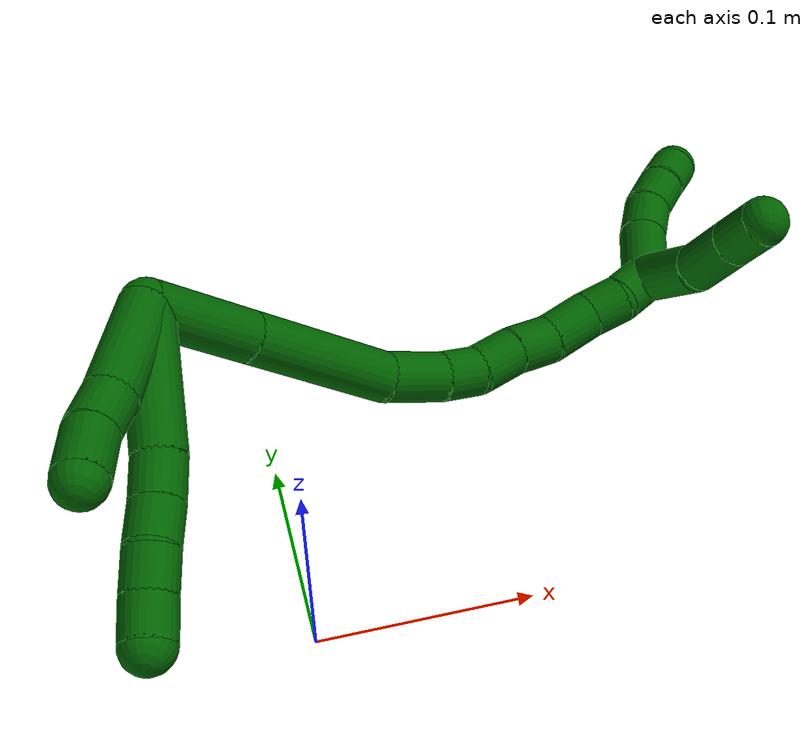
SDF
<sdf version="1.7">
 <world name="default">
  <model name="6">
   <static>0</static>
   <link name="6">
    <collision name="collision-cylinder-e_1_2_8">
     <pose>-0.00647 0.016798 -0.028931 -2.61553 -0.191045 0.683715</pose>
     <geometry><cylinder><radius>0.0125</radius><length>0.068148</length></cylinder></geometry>
     <surface>
      <friction><ode><mu>1.16</mu><mu2>1.16</mu2><slip1>0</slip1><slip2>0</slip2></ode></friction>
      <contact><ode><kp>1e+06</kp><kd>1</kd><max_vel>0</max_vel><min_depth>0.001</min_depth></ode></contact>
     </surface>
    </collision>
    <visual name="visual-cylinder-e_1_2_8">
     <pose>-0.00647 0.016798 -0.028931 -2.61553 -0.191045 0.683715</pose>
     <geometry><cylinder><radius>0.0125</radius><length>0.068148</length></cylinder></geometry>
     <material><ambient>0 0.392157 0.003922 1</ambient></material>
    </visual>
    <collision name="collision-cylinder-e_2_8_9">
     <pose>-0.015343 0.03736 -0.067508 -2.76962 -0.227998 1.0933</pose>
     <geometry><cylinder><radius>0.0125</radius><length>0.021258</length></cylinder></geometry>
     <surface>
      <friction><ode><mu>1.16</mu><mu2>1.16</mu2><slip1>0</slip1><slip2>0</slip2></ode></friction>
      <contact><ode><kp>1e+06</kp><kd>1</kd><max_vel>0</max_vel><min_depth>0.001</min_depth></ode></contact>
     </surface>
    </collision>
    <visual name="visual-cylinder-e_2_8_9">
     <pose>-0.015343 0.03736 -0.067508 -2.76962 -0.227998 1.0933</pose>
     <geometry><cylinder><radius>0.0125</radius><length>0.021258</length></cylinder></geometry>
     <material><ambient>0 0.392157 0.003922 1</ambient></material>
    </visual>
    <collision name="collision-cylinder-e_3_9_10">
     <pose>-0.019724 0.04343 -0.086875 -2.90864 -0.19549 1.39504</pose>
     <geometry><cylinder><radius>0.0125</radius><length>0.02037</length></cylinder></geometry>
     <surface>
      <friction><ode><mu>1.16</mu><mu2>1.16</mu2><slip1>0</slip1><slip2>0</slip2></ode></friction>
      <contact><ode><kp>1e+06</kp><kd>1</kd><max_vel>0</max_vel><min_depth>0.001</min_depth></ode></contact>
     </surface>
    </collision>
    <visual name="visual-cylinder-e_3_9_10">
     <pose>-0.019724 0.04343 -0.086875 -2.90864 -0.19549 1.39504</pose>
     <geometry><cylinder><radius>0.0125</radius><length>0.02037</length></cylinder></geometry>
     <material><ambient>0 0.392157 0.003922 1</ambient></material>
    </visual>
    <collision name="collision-cylinder-e_4_10_11">
     <pose>-0.024403 0.049569 -0.105446 -2.73293 -0.273048 1.17086</pose>
     <geometry><cylinder><radius>0.0125</radius><length>0.020031</length></cylinder></geometry>
     <surface>
      <friction><ode><mu>1.16</mu><mu2>1.16</mu2><slip1>0</slip1><slip2>0</slip2></ode></friction>
      <contact><ode><kp>1e+06</kp><kd>1</kd><max_vel>0</max_vel><min_depth>0.001</min_depth></ode></contact>
     </surface>
    </collision>
    <visual name="visual-cylinder-e_4_10_11">
     <pose>-0.024403 0.049569 -0.105446 -2.73293 -0.273048 1.17086</pose>
     <geometry><cylinder><radius>0.0125</radius><length>0.020031</length></cylinder></geometry>
     <material><ambient>0 0.392157 0.003922 1</ambient></material>
    </visual>
    <collision name="collision-cylinder-e_5_11_6">
     <pose>-0.02908 0.057064 -0.123495 -2.76268 -0.196965 0.951533</pose>
     <geometry><cylinder><radius>0.0125</radius><length>0.020193</length></cylinder></geometry>
     <surface>
      <friction><ode><mu>1.16</mu><mu2>1.16</mu2><slip1>0</slip1><slip2>0</slip2></ode></friction>
      <contact><ode><kp>1e+06</kp><kd>1</kd><max_vel>0</max_vel><min_depth>0.001</min_depth></ode></contact>
     </surface>
    </collision>
    <visual name="visual-cylinder-e_5_11_6">
     <pose>-0.02908 0.057064 -0.123495 -2.76268 -0.196965 0.951533</pose>
     <geometry><cylinder><radius>0.0125</radius><length>0.020193</length></cylinder></geometry>
     <material><ambient>0 0.392157 0.003922 1</ambient></material>
    </visual>
    <collision name="collision-cylinder-e_1_2_12">
     <pose>-0.006554 0.000849 -0.02488 -3.1075 -0.257426 2.87962</pose>
     <geometry><cylinder><radius>0.0125</radius><length>0.051485</length></cylinder></geometry>
     <surface>
      <friction><ode><mu>1.16</mu><mu2>1.16</mu2><slip1>0</slip1><slip2>0</slip2></ode></friction>
      <contact><ode><kp>1e+06</kp><kd>1</kd><max_vel>0</max_vel><min_depth>0.001</min_depth></ode></contact>
     </surface>
    </collision>
    <visual name="visual-cylinder-e_1_2_12">
     <pose>-0.006554 0.000849 -0.02488 -3.1075 -0.257426 2.87962</pose>
     <geometry><cylinder><radius>0.0125</radius><length>0.051485</length></cylinder></geometry>
     <material><ambient>0 0.392157 0.003922 1</ambient></material>
    </visual>
    <collision name="collision-cylinder-e_2_12_13">
     <pose>-0.015154 0.000398 -0.060587 3.02217 -0.185462 -1.99899</pose>
     <geometry><cylinder><radius>0.0125</radius><length>0.02219</length></cylinder></geometry>
     <surface>
      <friction><ode><mu>1.16</mu><mu2>1.16</mu2><slip1>0</slip1><slip2>0</slip2></ode></friction>
      <contact><ode><kp>1e+06</kp><kd>1</kd><max_vel>0</max_vel><min_depth>0.001</min_depth></ode></contact>
     </surface>
    </collision>
    <visual name="visual-cylinder-e_2_12_13">
     <pose>-0.015154 0.000398 -0.060587 3.02217 -0.185462 -1.99899</pose>
     <geometry><cylinder><radius>0.0125</radius><length>0.02219</length></cylinder></geometry>
     <material><ambient>0 0.392157 0.003922 1</ambient></material>
    </visual>
    <collision name="collision-cylinder-e_3_13_5">
     <pose>-0.017904 -0.000403 -0.084548 -3.10372 -0.053513 1.90995</pose>
     <geometry><cylinder><radius>0.0125</radius><length>0.026325</length></cylinder></geometry>
     <surface>
      <friction><ode><mu>1.16</mu><mu2>1.16</mu2><slip1>0</slip1><slip2>0</slip2></ode></friction>
      <contact><ode><kp>1e+06</kp><kd>1</kd><max_vel>0</max_vel><min_depth>0.001</min_depth></ode></contact>
     </surface>
    </collision>
    <visual name="visual-cylinder-e_3_13_5">
     <pose>-0.017904 -0.000403 -0.084548 -3.10372 -0.053513 1.90995</pose>
     <geometry><cylinder><radius>0.0125</radius><length>0.026325</length></cylinder></geometry>
     <material><ambient>0 0.392157 0.003922 1</ambient></material>
    </visual>
    <collision name="collision-cylinder-e_1_2_14">
     <pose>0.007505 0.024861 0.009521 -1.20504 0.274774 -0.189629</pose>
     <geometry><cylinder><radius>0.0125</radius><length>0.055319</length></cylinder></geometry>
     <surface>
      <friction><ode><mu>1.16</mu><mu2>1.16</mu2><slip1>0</slip1><slip2>0</slip2></ode></friction>
      <contact><ode><kp>1e+06</kp><kd>1</kd><max_vel>0</max_vel><min_depth>0.001</min_depth></ode></contact>
     </surface>
    </collision>
    <visual name="visual-cylinder-e_1_2_14">
     <pose>0.007505 0.024861 0.009521 -1.20504 0.274774 -0.189629</pose>
     <geometry><cylinder><radius>0.0125</radius><length>0.055319</length></cylinder></geometry>
     <material><ambient>0 0.392157 0.003922 1</ambient></material>
    </visual>
    <collision name="collision-cylinder-e_2_14_15">
     <pose>0.027228 0.085151 0.030986 -1.24567 0.315866 -0.227769</pose>
     <geometry><cylinder><radius>0.0125</radius><length>0.078668</length></cylinder></geometry>
     <surface>
      <friction><ode><mu>1.16</mu><mu2>1.16</mu2><slip1>0</slip1><slip2>0</slip2></ode></friction>
      <contact><ode><kp>1e+06</kp><kd>1</kd><max_vel>0</max_vel><min_depth>0.001</min_depth></ode></contact>
     </surface>
    </collision>
    <visual name="visual-cylinder-e_2_14_15">
     <pose>0.027228 0.085151 0.030986 -1.24567 0.315866 -0.227769</pose>
     <geometry><cylinder><radius>0.0125</radius><length>0.078668</length></cylinder></geometry>
     <material><ambient>0 0.392157 0.003922 1</ambient></material>
    </visual>
    <collision name="collision-cylinder-e_3_15_16">
     <pose>0.047795 0.132685 0.049167 -1.09493 0.54995 -0.340643</pose>
     <geometry><cylinder><radius>0.0125</radius><length>0.031946</length></cylinder></geometry>
     <surface>
      <friction><ode><mu>1.16</mu><mu2>1.16</mu2><slip1>0</slip1><slip2>0</slip2></ode></friction>
      <contact><ode><kp>1e+06</kp><kd>1</kd><max_vel>0</max_vel><min_depth>0.001</min_depth></ode></contact>
     </surface>
    </collision>
    <visual name="visual-cylinder-e_3_15_16">
     <pose>0.047795 0.132685 0.049167 -1.09493 0.54995 -0.340643</pose>
     <geometry><cylinder><radius>0.0125</radius><length>0.031946</length></cylinder></geometry>
     <material><ambient>0 0.392157 0.003922 1</ambient></material>
    </visual>
    <collision name="collision-cylinder-e_4_16_17">
     <pose>0.062572 0.151532 0.059903 -0.98259 0.670576 -0.36864</pose>
     <geometry><cylinder><radius>0.0125</radius><length>0.02069</length></cylinder></geometry>
     <surface>
      <friction><ode><mu>1.16</mu><mu2>1.16</mu2><slip1>0</slip1><slip2>0</slip2></ode></friction>
      <contact><ode><kp>1e+06</kp><kd>1</kd><max_vel>0</max_vel><min_depth>0.001</min_depth></ode></contact>
     </surface>
    </collision>
    <visual name="visual-cylinder-e_4_16_17">
     <pose>0.062572 0.151532 0.059903 -0.98259 0.670576 -0.36864</pose>
     <geometry><cylinder><radius>0.0125</radius><length>0.02069</length></cylinder></geometry>
     <material><ambient>0 0.392157 0.003922 1</ambient></material>
    </visual>
    <collision name="collision-cylinder-e_5_17_18">
     <pose>0.076866 0.163153 0.071523 -0.600411 0.738895 -0.238603</pose>
     <geometry><cylinder><radius>0.0125</radius><length>0.023357</length></cylinder></geometry>
     <surface>
      <friction><ode><mu>1.16</mu><mu2>1.16</mu2><slip1>0</slip1><slip2>0</slip2></ode></friction>
      <contact><ode><kp>1e+06</kp><kd>1</kd><max_vel>0</max_vel><min_depth>0.001</min_depth></ode></contact>
     </surface>
    </collision>
    <visual name="visual-cylinder-e_5_17_18">
     <pose>0.076866 0.163153 0.071523 -0.600411 0.738895 -0.238603</pose>
     <geometry><cylinder><radius>0.0125</radius><length>0.023357</length></cylinder></geometry>
     <material><ambient>0 0.392157 0.003922 1</ambient></material>
    </visual>
    <collision name="collision-cylinder-e_6_18_19">
     <pose>0.092239 0.174094 0.0842 -0.829304 0.739969 -0.338178</pose>
     <geometry><cylinder><radius>0.0125</radius><length>0.022271</length></cylinder></geometry>
     <surface>
      <friction><ode><mu>1.16</mu><mu2>1.16</mu2><slip1>0</slip1><slip2>0</slip2></ode></friction>
      <contact><ode><kp>1e+06</kp><kd>1</kd><max_vel>0</max_vel><min_depth>0.001</min_depth></ode></contact>
     </surface>
    </collision>
    <visual name="visual-cylinder-e_6_18_19">
     <pose>0.092239 0.174094 0.0842 -0.829304 0.739969 -0.338178</pose>
     <geometry><cylinder><radius>0.0125</radius><length>0.022271</length></cylinder></geometry>
     <material><ambient>0 0.392157 0.003922 1</ambient></material>
    </visual>
    <collision name="collision-cylinder-e_7_19_20">
     <pose>0.109242 0.184866 0.09781 -0.528814 0.794101 -0.226091</pose>
     <geometry><cylinder><radius>0.0125</radius><length>0.026624</length></cylinder></geometry>
     <surface>
      <friction><ode><mu>1.16</mu><mu2>1.16</mu2><slip1>0</slip1><slip2>0</slip2></ode></friction>
      <contact><ode><kp>1e+06</kp><kd>1</kd><max_vel>0</max_vel><min_depth>0.001</min_depth></ode></contact>
     </surface>
    </collision>
    <visual name="visual-cylinder-e_7_19_20">
     <pose>0.109242 0.184866 0.09781 -0.528814 0.794101 -0.226091</pose>
     <geometry><cylinder><radius>0.0125</radius><length>0.026624</length></cylinder></geometry>
     <material><ambient>0 0.392157 0.003922 1</ambient></material>
    </visual>
    <collision name="collision-cylinder-e_8_20_21">
     <pose>0.127152 0.193007 0.110222 -0.667566 0.988077 -0.369264</pose>
     <geometry><cylinder><radius>0.0125</radius><length>0.020157</length></cylinder></geometry>
     <surface>
      <friction><ode><mu>1.16</mu><mu2>1.16</mu2><slip1>0</slip1><slip2>0</slip2></ode></friction>
      <contact><ode><kp>1e+06</kp><kd>1</kd><max_vel>0</max_vel><min_depth>0.001</min_depth></ode></contact>
     </surface>
    </collision>
    <visual name="visual-cylinder-e_8_20_21">
     <pose>0.127152 0.193007 0.110222 -0.667566 0.988077 -0.369264</pose>
     <geometry><cylinder><radius>0.0125</radius><length>0.020157</length></cylinder></geometry>
     <material><ambient>0 0.392157 0.003922 1</ambient></material>
    </visual>
    <collision name="collision-cylinder-e_9_21_1">
     <pose>0.142389 0.199662 0.121858 -0.416584 0.708486 -0.156021</pose>
     <geometry><cylinder><radius>0.0125</radius><length>0.020968</length></cylinder></geometry>
     <surface>
      <friction><ode><mu>1.16</mu><mu2>1.16</mu2><slip1>0</slip1><slip2>0</slip2></ode></friction>
      <contact><ode><kp>1e+06</kp><kd>1</kd><max_vel>0</max_vel><min_depth>0.001</min_depth></ode></contact>
     </surface>
    </collision>
    <visual name="visual-cylinder-e_9_21_1">
     <pose>0.142389 0.199662 0.121858 -0.416584 0.708486 -0.156021</pose>
     <geometry><cylinder><radius>0.0125</radius><length>0.020968</length></cylinder></geometry>
     <material><ambient>0 0.392157 0.003922 1</ambient></material>
    </visual>
    <collision name="collision-cylinder-e_1_1_22">
     <pose>0.151073 0.202276 0.146181 0.035622 0.108716 0.001938</pose>
     <geometry><cylinder><radius>0.0125</radius><length>0.03431</length></cylinder></geometry>
     <surface>
      <friction><ode><mu>1.16</mu><mu2>1.16</mu2><slip1>0</slip1><slip2>0</slip2></ode></friction>
      <contact><ode><kp>1e+06</kp><kd>1</kd><max_vel>0</max_vel><min_depth>0.001</min_depth></ode></contact>
     </surface>
    </collision>
    <visual name="visual-cylinder-e_1_1_22">
     <pose>0.151073 0.202276 0.146181 0.035622 0.108716 0.001938</pose>
     <geometry><cylinder><radius>0.0125</radius><length>0.03431</length></cylinder></geometry>
     <material><ambient>0 0.392157 0.003922 1</ambient></material>
    </visual>
    <collision name="collision-cylinder-e_2_22_23">
     <pose>0.156039 0.20126 0.173818 0.038568 0.284933 0.005533</pose>
     <geometry><cylinder><radius>0.0125</radius><length>0.022095</length></cylinder></geometry>
     <surface>
      <friction><ode><mu>1.16</mu><mu2>1.16</mu2><slip1>0</slip1><slip2>0</slip2></ode></friction>
      <contact><ode><kp>1e+06</kp><kd>1</kd><max_vel>0</max_vel><min_depth>0.001</min_depth></ode></contact>
     </surface>
    </collision>
    <visual name="visual-cylinder-e_2_22_23">
     <pose>0.156039 0.20126 0.173818 0.038568 0.284933 0.005533</pose>
     <geometry><cylinder><radius>0.0125</radius><length>0.022095</length></cylinder></geometry>
     <material><ambient>0 0.392157 0.003922 1</ambient></material>
    </visual>
    <collision name="collision-cylinder-e_3_23_24">
     <pose>0.163797 0.202686 0.19416 -0.18603 0.438545 -0.041572</pose>
     <geometry><cylinder><radius>0.0125</radius><length>0.021911</length></cylinder></geometry>
     <surface>
      <friction><ode><mu>1.16</mu><mu2>1.16</mu2><slip1>0</slip1><slip2>0</slip2></ode></friction>
      <contact><ode><kp>1e+06</kp><kd>1</kd><max_vel>0</max_vel><min_depth>0.001</min_depth></ode></contact>
     </surface>
    </collision>
    <visual name="visual-cylinder-e_3_23_24">
     <pose>0.163797 0.202686 0.19416 -0.18603 0.438545 -0.041572</pose>
     <geometry><cylinder><radius>0.0125</radius><length>0.021911</length></cylinder></geometry>
     <material><ambient>0 0.392157 0.003922 1</ambient></material>
    </visual>
    <collision name="collision-cylinder-e_4_24_4">
     <pose>0.172056 0.207574 0.213665 -0.303289 0.33916 -0.05232</pose>
     <geometry><cylinder><radius>0.0125</radius><length>0.021684</length></cylinder></geometry>
     <surface>
      <friction><ode><mu>1.16</mu><mu2>1.16</mu2><slip1>0</slip1><slip2>0</slip2></ode></friction>
      <contact><ode><kp>1e+06</kp><kd>1</kd><max_vel>0</max_vel><min_depth>0.001</min_depth></ode></contact>
     </surface>
    </collision>
    <visual name="visual-cylinder-e_4_24_4">
     <pose>0.172056 0.207574 0.213665 -0.303289 0.33916 -0.05232</pose>
     <geometry><cylinder><radius>0.0125</radius><length>0.021684</length></cylinder></geometry>
     <material><ambient>0 0.392157 0.003922 1</ambient></material>
    </visual>
    <collision name="collision-cylinder-e_1_1_25">
     <pose>0.165388 0.197263 0.11469 2.77061 0.806684 2.31303</pose>
     <geometry><cylinder><radius>0.0125</radius><length>0.044812</length></cylinder></geometry>
     <surface>
      <friction><ode><mu>1.16</mu><mu2>1.16</mu2><slip1>0</slip1><slip2>0</slip2></ode></friction>
      <contact><ode><kp>1e+06</kp><kd>1</kd><max_vel>0</max_vel><min_depth>0.001</min_depth></ode></contact>
     </surface>
    </collision>
    <visual name="visual-cylinder-e_1_1_25">
     <pose>0.165388 0.197263 0.11469 2.77061 0.806684 2.31303</pose>
     <geometry><cylinder><radius>0.0125</radius><length>0.044812</length></cylinder></geometry>
     <material><ambient>0 0.392157 0.003922 1</ambient></material>
    </visual>
    <collision name="collision-cylinder-e_2_25_26">
     <pose>0.194161 0.185331 0.093715 2.37294 0.946207 1.80424</pose>
     <geometry><cylinder><radius>0.0125</radius><length>0.031054</length></cylinder></geometry>
     <surface>
      <friction><ode><mu>1.16</mu><mu2>1.16</mu2><slip1>0</slip1><slip2>0</slip2></ode></friction>
      <contact><ode><kp>1e+06</kp><kd>1</kd><max_vel>0</max_vel><min_depth>0.001</min_depth></ode></contact>
     </surface>
    </collision>
    <visual name="visual-cylinder-e_2_25_26">
     <pose>0.194161 0.185331 0.093715 2.37294 0.946207 1.80424</pose>
     <geometry><cylinder><radius>0.0125</radius><length>0.031054</length></cylinder></geometry>
     <material><ambient>0 0.392157 0.003922 1</ambient></material>
    </visual>
    <collision name="collision-cylinder-e_3_26_3">
     <pose>0.216358 0.174095 0.081787 2.40237 0.920164 1.81451</pose>
     <geometry><cylinder><radius>0.0125</radius><length>0.024133</length></cylinder></geometry>
     <surface>
      <friction><ode><mu>1.16</mu><mu2>1.16</mu2><slip1>0</slip1><slip2>0</slip2></ode></friction>
      <contact><ode><kp>1e+06</kp><kd>1</kd><max_vel>0</max_vel><min_depth>0.001</min_depth></ode></contact>
     </surface>
    </collision>
    <visual name="visual-cylinder-e_3_26_3">
     <pose>0.216358 0.174095 0.081787 2.40237 0.920164 1.81451</pose>
     <geometry><cylinder><radius>0.0125</radius><length>0.024133</length></cylinder></geometry>
     <material><ambient>0 0.392157 0.003922 1</ambient></material>
    </visual>
    <collision name="collision-sphere-3">
     <pose>0.22596 0.169171 0.076386 0 -0 0</pose>
     <geometry><sphere><radius>0.0125</radius></sphere></geometry>
     <surface>
      <friction><ode><mu>1.16</mu><mu2>1.16</mu2><slip1>0</slip1><slip2>0</slip2></ode></friction>
      <contact><ode><kp>1e+06</kp><kd>1</kd><max_vel>0</max_vel><min_depth>0.001</min_depth></ode></contact>
     </surface>
    </collision>
    <visual name="visual-sphere-3">
     <pose>0.22596 0.169171 0.076386 0 -0 0</pose>
     <geometry><sphere><radius>0.0125</radius></sphere></geometry>
     <material><ambient>0 0.392157 0.003922 1</ambient></material>
    </visual>
    <collision name="collision-sphere-26">
     <pose>0.206757 0.179019 0.087188 0 -0 0</pose>
     <geometry><sphere><radius>0.0125</radius></sphere></geometry>
     <surface>
      <friction><ode><mu>1.16</mu><mu2>1.16</mu2><slip1>0</slip1><slip2>0</slip2></ode></friction>
      <contact><ode><kp>1e+06</kp><kd>1</kd><max_vel>0</max_vel><min_depth>0.001</min_depth></ode></contact>
     </surface>
    </collision>
    <visual name="visual-sphere-26">
     <pose>0.206757 0.179019 0.087188 0 -0 0</pose>
     <geometry><sphere><radius>0.0125</radius></sphere></geometry>
     <material><ambient>0 0.392157 0.003922 1</ambient></material>
    </visual>
    <collision name="collision-sphere-25">
     <pose>0.181566 0.191643 0.100242 0 -0 0</pose>
     <geometry><sphere><radius>0.0125</radius></sphere></geometry>
     <surface>
      <friction><ode><mu>1.16</mu><mu2>1.16</mu2><slip1>0</slip1><slip2>0</slip2></ode></friction>
      <contact><ode><kp>1e+06</kp><kd>1</kd><max_vel>0</max_vel><min_depth>0.001</min_depth></ode></contact>
     </surface>
    </collision>
    <visual name="visual-sphere-25">
     <pose>0.181566 0.191643 0.100242 0 -0 0</pose>
     <geometry><sphere><radius>0.0125</radius></sphere></geometry>
     <material><ambient>0 0.392157 0.003922 1</ambient></material>
    </visual>
    <collision name="collision-sphere-4">
     <pose>0.175663 0.210628 0.223423 0 -0 0</pose>
     <geometry><sphere><radius>0.0125</radius></sphere></geometry>
     <surface>
      <friction><ode><mu>1.16</mu><mu2>1.16</mu2><slip1>0</slip1><slip2>0</slip2></ode></friction>
      <contact><ode><kp>1e+06</kp><kd>1</kd><max_vel>0</max_vel><min_depth>0.001</min_depth></ode></contact>
     </surface>
    </collision>
    <visual name="visual-sphere-4">
     <pose>0.175663 0.210628 0.223423 0 -0 0</pose>
     <geometry><sphere><radius>0.0125</radius></sphere></geometry>
     <material><ambient>0 0.392157 0.003922 1</ambient></material>
    </visual>
    <collision name="collision-sphere-24">
     <pose>0.168448 0.20452 0.203907 0 -0 0</pose>
     <geometry><sphere><radius>0.0125</radius></sphere></geometry>
     <surface>
      <friction><ode><mu>1.16</mu><mu2>1.16</mu2><slip1>0</slip1><slip2>0</slip2></ode></friction>
      <contact><ode><kp>1e+06</kp><kd>1</kd><max_vel>0</max_vel><min_depth>0.001</min_depth></ode></contact>
     </surface>
    </collision>
    <visual name="visual-sphere-24">
     <pose>0.168448 0.20452 0.203907 0 -0 0</pose>
     <geometry><sphere><radius>0.0125</radius></sphere></geometry>
     <material><ambient>0 0.392157 0.003922 1</ambient></material>
    </visual>
    <collision name="collision-sphere-23">
     <pose>0.159145 0.200851 0.184412 0 -0 0</pose>
     <geometry><sphere><radius>0.0125</radius></sphere></geometry>
     <surface>
      <friction><ode><mu>1.16</mu><mu2>1.16</mu2><slip1>0</slip1><slip2>0</slip2></ode></friction>
      <contact><ode><kp>1e+06</kp><kd>1</kd><max_vel>0</max_vel><min_depth>0.001</min_depth></ode></contact>
     </surface>
    </collision>
    <visual name="visual-sphere-23">
     <pose>0.159145 0.200851 0.184412 0 -0 0</pose>
     <geometry><sphere><radius>0.0125</radius></sphere></geometry>
     <material><ambient>0 0.392157 0.003922 1</ambient></material>
    </visual>
    <collision name="collision-sphere-22">
     <pose>0.152934 0.201669 0.163224 0 -0 0</pose>
     <geometry><sphere><radius>0.0125</radius></sphere></geometry>
     <surface>
      <friction><ode><mu>1.16</mu><mu2>1.16</mu2><slip1>0</slip1><slip2>0</slip2></ode></friction>
      <contact><ode><kp>1e+06</kp><kd>1</kd><max_vel>0</max_vel><min_depth>0.001</min_depth></ode></contact>
     </surface>
    </collision>
    <visual name="visual-sphere-22">
     <pose>0.152934 0.201669 0.163224 0 -0 0</pose>
     <geometry><sphere><radius>0.0125</radius></sphere></geometry>
     <material><ambient>0 0.392157 0.003922 1</ambient></material>
    </visual>
    <collision name="collision-sphere-1">
     <pose>0.149211 0.202884 0.129138 0 -0 0</pose>
     <geometry><sphere><radius>0.0125</radius></sphere></geometry>
     <surface>
      <friction><ode><mu>1.16</mu><mu2>1.16</mu2><slip1>0</slip1><slip2>0</slip2></ode></friction>
      <contact><ode><kp>1e+06</kp><kd>1</kd><max_vel>0</max_vel><min_depth>0.001</min_depth></ode></contact>
     </surface>
    </collision>
    <visual name="visual-sphere-1">
     <pose>0.149211 0.202884 0.129138 0 -0 0</pose>
     <geometry><sphere><radius>0.0125</radius></sphere></geometry>
     <material><ambient>0 0.392157 0.003922 1</ambient></material>
    </visual>
    <collision name="collision-sphere-21">
     <pose>0.135567 0.196441 0.114578 0 -0 0</pose>
     <geometry><sphere><radius>0.0125</radius></sphere></geometry>
     <surface>
      <friction><ode><mu>1.16</mu><mu2>1.16</mu2><slip1>0</slip1><slip2>0</slip2></ode></friction>
      <contact><ode><kp>1e+06</kp><kd>1</kd><max_vel>0</max_vel><min_depth>0.001</min_depth></ode></contact>
     </surface>
    </collision>
    <visual name="visual-sphere-21">
     <pose>0.135567 0.196441 0.114578 0 -0 0</pose>
     <geometry><sphere><radius>0.0125</radius></sphere></geometry>
     <material><ambient>0 0.392157 0.003922 1</ambient></material>
    </visual>
    <collision name="collision-sphere-6">
     <pose>-0.031055 0.060726 -0.132694 0 -0 0</pose>
     <geometry><sphere><radius>0.0125</radius></sphere></geometry>
     <surface>
      <friction><ode><mu>1.16</mu><mu2>1.16</mu2><slip1>0</slip1><slip2>0</slip2></ode></friction>
      <contact><ode><kp>1e+06</kp><kd>1</kd><max_vel>0</max_vel><min_depth>0.001</min_depth></ode></contact>
     </surface>
    </collision>
    <visual name="visual-sphere-6">
     <pose>-0.031055 0.060726 -0.132694 0 -0 0</pose>
     <geometry><sphere><radius>0.0125</radius></sphere></geometry>
     <material><ambient>0 0.392157 0.003922 1</ambient></material>
    </visual>
    <collision name="collision-sphere-11">
     <pose>-0.027104 0.053401 -0.114296 0 -0 0</pose>
     <geometry><sphere><radius>0.0125</radius></sphere></geometry>
     <surface>
      <friction><ode><mu>1.16</mu><mu2>1.16</mu2><slip1>0</slip1><slip2>0</slip2></ode></friction>
      <contact><ode><kp>1e+06</kp><kd>1</kd><max_vel>0</max_vel><min_depth>0.001</min_depth></ode></contact>
     </surface>
    </collision>
    <visual name="visual-sphere-11">
     <pose>-0.027104 0.053401 -0.114296 0 -0 0</pose>
     <geometry><sphere><radius>0.0125</radius></sphere></geometry>
     <material><ambient>0 0.392157 0.003922 1</ambient></material>
    </visual>
    <collision name="collision-sphere-10">
     <pose>-0.021702 0.045736 -0.096596 0 -0 0</pose>
     <geometry><sphere><radius>0.0125</radius></sphere></geometry>
     <surface>
      <friction><ode><mu>1.16</mu><mu2>1.16</mu2><slip1>0</slip1><slip2>0</slip2></ode></friction>
      <contact><ode><kp>1e+06</kp><kd>1</kd><max_vel>0</max_vel><min_depth>0.001</min_depth></ode></contact>
     </surface>
    </collision>
    <visual name="visual-sphere-10">
     <pose>-0.021702 0.045736 -0.096596 0 -0 0</pose>
     <geometry><sphere><radius>0.0125</radius></sphere></geometry>
     <material><ambient>0 0.392157 0.003922 1</ambient></material>
    </visual>
    <collision name="collision-sphere-9">
     <pose>-0.017745 0.041123 -0.077154 0 -0 0</pose>
     <geometry><sphere><radius>0.0125</radius></sphere></geometry>
     <surface>
      <friction><ode><mu>1.16</mu><mu2>1.16</mu2><slip1>0</slip1><slip2>0</slip2></ode></friction>
      <contact><ode><kp>1e+06</kp><kd>1</kd><max_vel>0</max_vel><min_depth>0.001</min_depth></ode></contact>
     </surface>
    </collision>
    <visual name="visual-sphere-9">
     <pose>-0.017745 0.041123 -0.077154 0 -0 0</pose>
     <geometry><sphere><radius>0.0125</radius></sphere></geometry>
     <material><ambient>0 0.392157 0.003922 1</ambient></material>
    </visual>
    <collision name="collision-sphere-2">
     <geometry><sphere><radius>0.0125</radius></sphere></geometry>
     <surface>
      <friction><ode><mu>1.16</mu><mu2>1.16</mu2><slip1>0</slip1><slip2>0</slip2></ode></friction>
      <contact><ode><kp>1e+06</kp><kd>1</kd><max_vel>0</max_vel><min_depth>0.001</min_depth></ode></contact>
     </surface>
    </collision>
    <visual name="visual-sphere-2">
     <geometry><sphere><radius>0.0125</radius></sphere></geometry>
     <material><ambient>0 0.392157 0.003922 1</ambient></material>
    </visual>
    <collision name="collision-sphere-19">
     <pose>0.099748 0.180159 0.089754 0 -0 0</pose>
     <geometry><sphere><radius>0.0125</radius></sphere></geometry>
     <surface>
      <friction><ode><mu>1.16</mu><mu2>1.16</mu2><slip1>0</slip1><slip2>0</slip2></ode></friction>
      <contact><ode><kp>1e+06</kp><kd>1</kd><max_vel>0</max_vel><min_depth>0.001</min_depth></ode></contact>
     </surface>
    </collision>
    <visual name="visual-sphere-19">
     <pose>0.099748 0.180159 0.089754 0 -0 0</pose>
     <geometry><sphere><radius>0.0125</radius></sphere></geometry>
     <material><ambient>0 0.392157 0.003922 1</ambient></material>
    </visual>
    <collision name="collision-sphere-8">
     <pose>-0.01294 0.033597 -0.057862 0 -0 0</pose>
     <geometry><sphere><radius>0.0125</radius></sphere></geometry>
     <surface>
      <friction><ode><mu>1.16</mu><mu2>1.16</mu2><slip1>0</slip1><slip2>0</slip2></ode></friction>
      <contact><ode><kp>1e+06</kp><kd>1</kd><max_vel>0</max_vel><min_depth>0.001</min_depth></ode></contact>
     </surface>
    </collision>
    <visual name="visual-sphere-8">
     <pose>-0.01294 0.033597 -0.057862 0 -0 0</pose>
     <geometry><sphere><radius>0.0125</radius></sphere></geometry>
     <material><ambient>0 0.392157 0.003922 1</ambient></material>
    </visual>
    <collision name="collision-sphere-12">
     <pose>-0.013108 0.001697 -0.049759 0 -0 0</pose>
     <geometry><sphere><radius>0.0125</radius></sphere></geometry>
     <surface>
      <friction><ode><mu>1.16</mu><mu2>1.16</mu2><slip1>0</slip1><slip2>0</slip2></ode></friction>
      <contact><ode><kp>1e+06</kp><kd>1</kd><max_vel>0</max_vel><min_depth>0.001</min_depth></ode></contact>
     </surface>
    </collision>
    <visual name="visual-sphere-12">
     <pose>-0.013108 0.001697 -0.049759 0 -0 0</pose>
     <geometry><sphere><radius>0.0125</radius></sphere></geometry>
     <material><ambient>0 0.392157 0.003922 1</ambient></material>
    </visual>
    <collision name="collision-sphere-13">
     <pose>-0.0172 -0.000901 -0.071414 0 -0 0</pose>
     <geometry><sphere><radius>0.0125</radius></sphere></geometry>
     <surface>
      <friction><ode><mu>1.16</mu><mu2>1.16</mu2><slip1>0</slip1><slip2>0</slip2></ode></friction>
      <contact><ode><kp>1e+06</kp><kd>1</kd><max_vel>0</max_vel><min_depth>0.001</min_depth></ode></contact>
     </surface>
    </collision>
    <visual name="visual-sphere-13">
     <pose>-0.0172 -0.000901 -0.071414 0 -0 0</pose>
     <geometry><sphere><radius>0.0125</radius></sphere></geometry>
     <material><ambient>0 0.392157 0.003922 1</ambient></material>
    </visual>
    <collision name="collision-sphere-5">
     <pose>-0.018608 9.4e-05 -0.097682 0 -0 0</pose>
     <geometry><sphere><radius>0.0125</radius></sphere></geometry>
     <surface>
      <friction><ode><mu>1.16</mu><mu2>1.16</mu2><slip1>0</slip1><slip2>0</slip2></ode></friction>
      <contact><ode><kp>1e+06</kp><kd>1</kd><max_vel>0</max_vel><min_depth>0.001</min_depth></ode></contact>
     </surface>
    </collision>
    <visual name="visual-sphere-5">
     <pose>-0.018608 9.4e-05 -0.097682 0 -0 0</pose>
     <geometry><sphere><radius>0.0125</radius></sphere></geometry>
     <material><ambient>0 0.392157 0.003922 1</ambient></material>
    </visual>
    <collision name="collision-sphere-14">
     <pose>0.01501 0.049722 0.019043 0 -0 0</pose>
     <geometry><sphere><radius>0.0125</radius></sphere></geometry>
     <surface>
      <friction><ode><mu>1.16</mu><mu2>1.16</mu2><slip1>0</slip1><slip2>0</slip2></ode></friction>
      <contact><ode><kp>1e+06</kp><kd>1</kd><max_vel>0</max_vel><min_depth>0.001</min_depth></ode></contact>
     </surface>
    </collision>
    <visual name="visual-sphere-14">
     <pose>0.01501 0.049722 0.019043 0 -0 0</pose>
     <geometry><sphere><radius>0.0125</radius></sphere></geometry>
     <material><ambient>0 0.392157 0.003922 1</ambient></material>
    </visual>
    <collision name="collision-sphere-15">
     <pose>0.039447 0.12058 0.042929 0 -0 0</pose>
     <geometry><sphere><radius>0.0125</radius></sphere></geometry>
     <surface>
      <friction><ode><mu>1.16</mu><mu2>1.16</mu2><slip1>0</slip1><slip2>0</slip2></ode></friction>
      <contact><ode><kp>1e+06</kp><kd>1</kd><max_vel>0</max_vel><min_depth>0.001</min_depth></ode></contact>
     </surface>
    </collision>
    <visual name="visual-sphere-15">
     <pose>0.039447 0.12058 0.042929 0 -0 0</pose>
     <geometry><sphere><radius>0.0125</radius></sphere></geometry>
     <material><ambient>0 0.392157 0.003922 1</ambient></material>
    </visual>
    <collision name="collision-sphere-16">
     <pose>0.056143 0.14479 0.055406 0 -0 0</pose>
     <geometry><sphere><radius>0.0125</radius></sphere></geometry>
     <surface>
      <friction><ode><mu>1.16</mu><mu2>1.16</mu2><slip1>0</slip1><slip2>0</slip2></ode></friction>
      <contact><ode><kp>1e+06</kp><kd>1</kd><max_vel>0</max_vel><min_depth>0.001</min_depth></ode></contact>
     </surface>
    </collision>
    <visual name="visual-sphere-16">
     <pose>0.056143 0.14479 0.055406 0 -0 0</pose>
     <geometry><sphere><radius>0.0125</radius></sphere></geometry>
     <material><ambient>0 0.392157 0.003922 1</ambient></material>
    </visual>
    <collision name="collision-sphere-17">
     <pose>0.069001 0.158275 0.0644 0 -0 0</pose>
     <geometry><sphere><radius>0.0125</radius></sphere></geometry>
     <surface>
      <friction><ode><mu>1.16</mu><mu2>1.16</mu2><slip1>0</slip1><slip2>0</slip2></ode></friction>
      <contact><ode><kp>1e+06</kp><kd>1</kd><max_vel>0</max_vel><min_depth>0.001</min_depth></ode></contact>
     </surface>
    </collision>
    <visual name="visual-sphere-17">
     <pose>0.069001 0.158275 0.0644 0 -0 0</pose>
     <geometry><sphere><radius>0.0125</radius></sphere></geometry>
     <material><ambient>0 0.392157 0.003922 1</ambient></material>
    </visual>
    <collision name="collision-sphere-18">
     <pose>0.084731 0.16803 0.078646 0 -0 0</pose>
     <geometry><sphere><radius>0.0125</radius></sphere></geometry>
     <surface>
      <friction><ode><mu>1.16</mu><mu2>1.16</mu2><slip1>0</slip1><slip2>0</slip2></ode></friction>
      <contact><ode><kp>1e+06</kp><kd>1</kd><max_vel>0</max_vel><min_depth>0.001</min_depth></ode></contact>
     </surface>
    </collision>
    <visual name="visual-sphere-18">
     <pose>0.084731 0.16803 0.078646 0 -0 0</pose>
     <geometry><sphere><radius>0.0125</radius></sphere></geometry>
     <material><ambient>0 0.392157 0.003922 1</ambient></material>
    </visual>
    <collision name="collision-sphere-20">
     <pose>0.118737 0.189574 0.105867 0 -0 0</pose>
     <geometry><sphere><radius>0.0125</radius></sphere></geometry>
     <surface>
      <friction><ode><mu>1.16</mu><mu2>1.16</mu2><slip1>0</slip1><slip2>0</slip2></ode></friction>
      <contact><ode><kp>1e+06</kp><kd>1</kd><max_vel>0</max_vel><min_depth>0.001</min_depth></ode></contact>
     </surface>
    </collision>
    <visual name="visual-sphere-20">
     <pose>0.118737 0.189574 0.105867 0 -0 0</pose>
     <geometry><sphere><radius>0.0125</radius></sphere></geometry>
     <material><ambient>0 0.392157 0.003922 1</ambient></material>
    </visual>
    <inertial>
     <pose>0.065212 0.107028 0.03978 0 -0 0</pose>
     <mass>0.75</mass>
     <inertia><ixx>0.000117</ixx><ixy>0</ixy><ixz>0</ixz><iyy>9e-05</iyy><iyz>0</iyz><izz>-0.000109</izz></inertia>
    </inertial>
   </link>
   <pose>-0.045825 0.108251 0.116853 -1.71792 -0.585592 -0.143862</pose>
  </model>
 </world>
</sdf>
